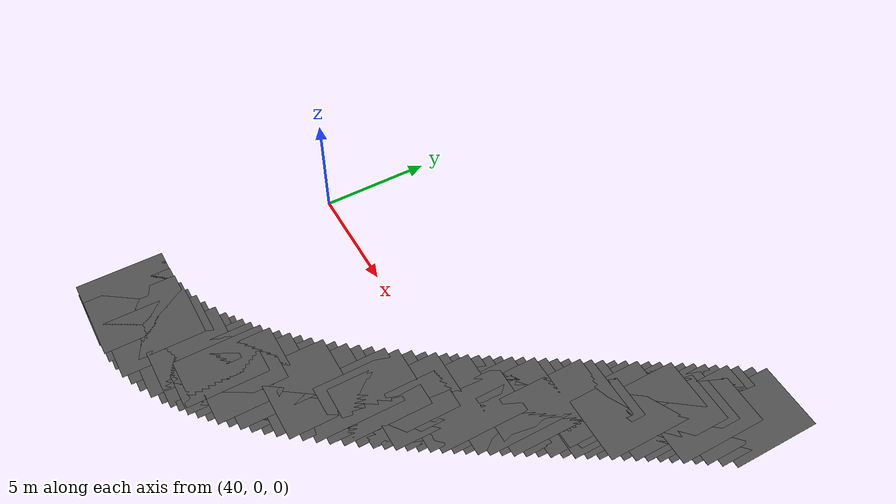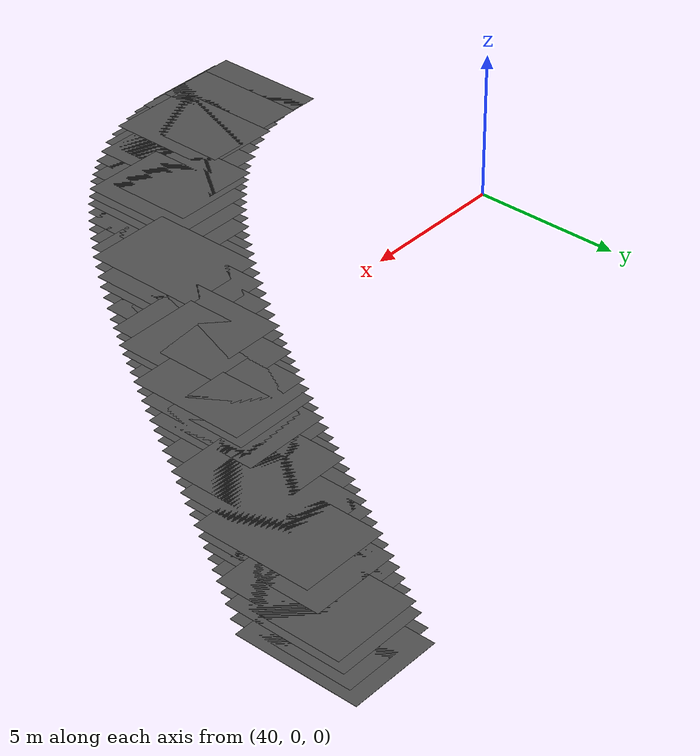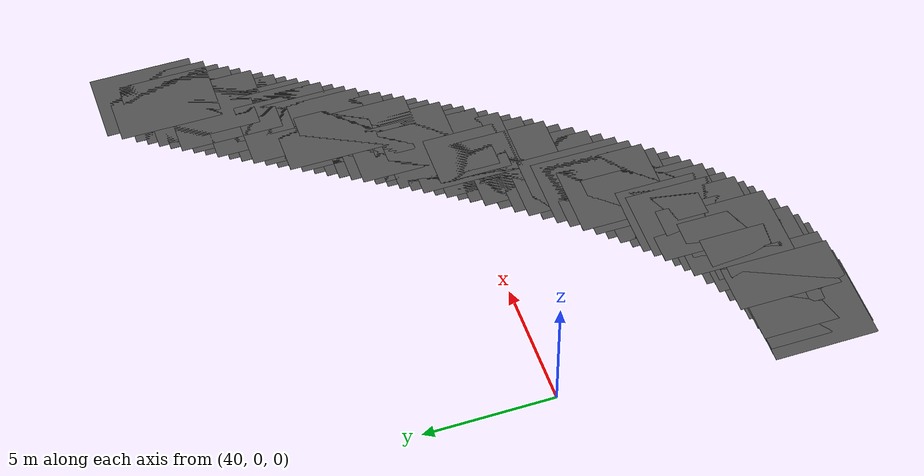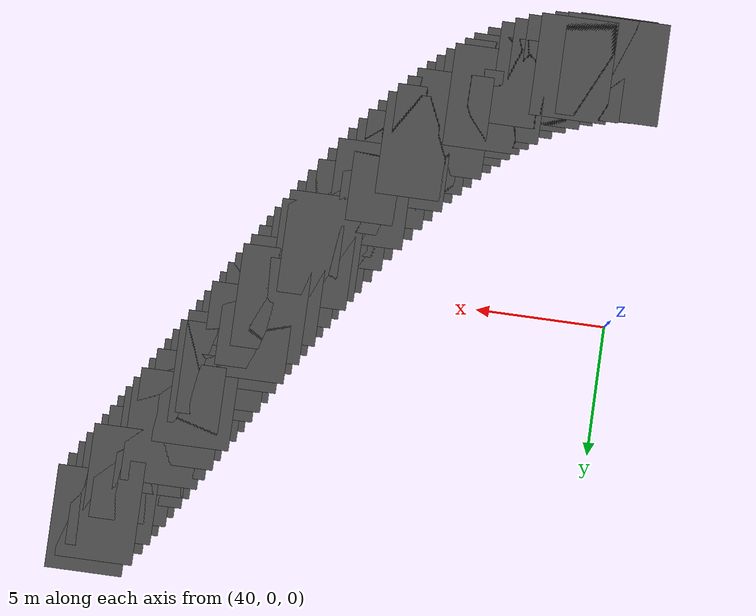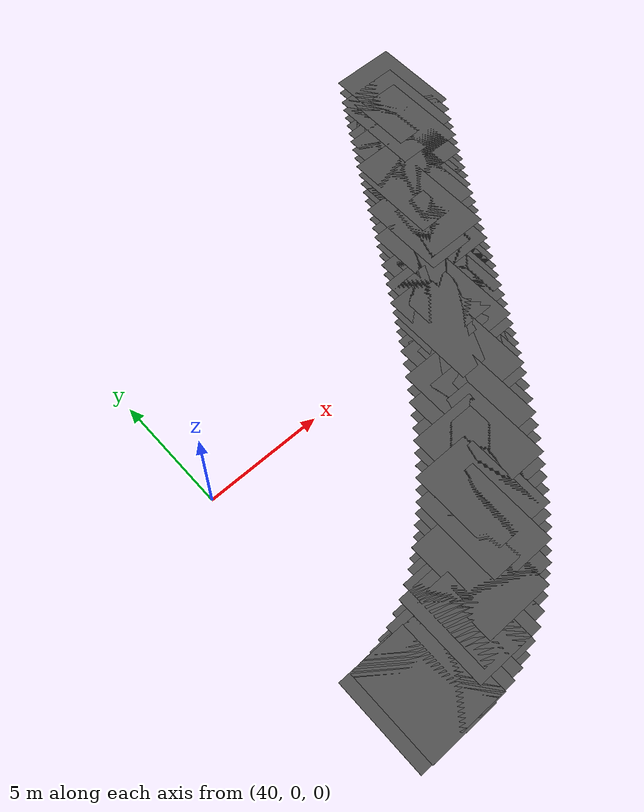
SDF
<sdf version="1.7">
 <world name="default">
  <model name="roadSegment_40_1">
   <static>1</static>
   <link name="link">
    <collision name="collision"><geometry><box><size>3 4 0.01</size></box></geometry></collision>
    <visual name="visual">
     <cast_shadows>0</cast_shadows>
     <geometry><box><size>3 4 0.01</size></box></geometry>
     <material>
      <script>
       <uri>model://asphalt_plane/materials/scripts</uri>
       <uri>model://asphalt_plane/materials/textures</uri>
       <name>vrc/asphalt</name>
      </script>
     </material>
    </visual>
   </link>
   <pose>40.5 -9.99283 0 0 -0 0</pose>
  </model>
  <model name="roadSegment_41_0">
   <static>1</static>
   <link name="link">
    <collision name="collision"><geometry><box><size>3 4 0.01</size></box></geometry></collision>
    <visual name="visual">
     <cast_shadows>0</cast_shadows>
     <geometry><box><size>3 4 0.01</size></box></geometry>
     <material>
      <script>
       <uri>model://asphalt_plane/materials/scripts</uri>
       <uri>model://asphalt_plane/materials/textures</uri>
       <name>vrc/asphalt</name>
      </script>
     </material>
    </visual>
   </link>
   <pose>41 -10.0257 0 0 -0 0</pose>
  </model>
  <model name="roadSegment_41_1">
   <static>1</static>
   <link name="link">
    <collision name="collision"><geometry><box><size>3 4 0.01</size></box></geometry></collision>
    <visual name="visual">
     <cast_shadows>0</cast_shadows>
     <geometry><box><size>3 4 0.01</size></box></geometry>
     <material>
      <script>
       <uri>model://asphalt_plane/materials/scripts</uri>
       <uri>model://asphalt_plane/materials/textures</uri>
       <name>vrc/asphalt</name>
      </script>
     </material>
    </visual>
   </link>
   <pose>41.5 -9.98021 0 0 -0 0</pose>
  </model>
  <model name="roadSegment_42_0">
   <static>1</static>
   <link name="link">
    <collision name="collision"><geometry><box><size>3 4 0.01</size></box></geometry></collision>
    <visual name="visual">
     <cast_shadows>0</cast_shadows>
     <geometry><box><size>3 4 0.01</size></box></geometry>
     <material>
      <script>
       <uri>model://asphalt_plane/materials/scripts</uri>
       <uri>model://asphalt_plane/materials/textures</uri>
       <name>vrc/asphalt</name>
      </script>
     </material>
    </visual>
   </link>
   <pose>42 -9.93471 0 0 -0 0</pose>
  </model>
  <model name="roadSegment_42_1">
   <static>1</static>
   <link name="link">
    <collision name="collision"><geometry><box><size>3 4 0.01</size></box></geometry></collision>
    <visual name="visual">
     <cast_shadows>0</cast_shadows>
     <geometry><box><size>3 4 0.01</size></box></geometry>
     <material>
      <script>
       <uri>model://asphalt_plane/materials/scripts</uri>
       <uri>model://asphalt_plane/materials/textures</uri>
       <name>vrc/asphalt</name>
      </script>
     </material>
    </visual>
   </link>
   <pose>42.5 -9.80802 0 0 -0 0</pose>
  </model>
  <model name="roadSegment_43_0">
   <static>1</static>
   <link name="link">
    <collision name="collision"><geometry><box><size>3 4 0.01</size></box></geometry></collision>
    <visual name="visual">
     <cast_shadows>0</cast_shadows>
     <geometry><box><size>3 4 0.01</size></box></geometry>
     <material>
      <script>
       <uri>model://asphalt_plane/materials/scripts</uri>
       <uri>model://asphalt_plane/materials/textures</uri>
       <name>vrc/asphalt</name>
      </script>
     </material>
    </visual>
   </link>
   <pose>43 -9.68132 0 0 -0 0</pose>
  </model>
  <model name="roadSegment_43_1">
   <static>1</static>
   <link name="link">
    <collision name="collision"><geometry><box><size>3 4 0.01</size></box></geometry></collision>
    <visual name="visual">
     <cast_shadows>0</cast_shadows>
     <geometry><box><size>3 4 0.01</size></box></geometry>
     <material>
      <script>
       <uri>model://asphalt_plane/materials/scripts</uri>
       <uri>model://asphalt_plane/materials/textures</uri>
       <name>vrc/asphalt</name>
      </script>
     </material>
    </visual>
   </link>
   <pose>43.5 -9.47194 0 0 -0 0</pose>
  </model>
  <model name="roadSegment_44_0">
   <static>1</static>
   <link name="link">
    <collision name="collision"><geometry><box><size>3 4 0.01</size></box></geometry></collision>
    <visual name="visual">
     <cast_shadows>0</cast_shadows>
     <geometry><box><size>3 4 0.01</size></box></geometry>
     <material>
      <script>
       <uri>model://asphalt_plane/materials/scripts</uri>
       <uri>model://asphalt_plane/materials/textures</uri>
       <name>vrc/asphalt</name>
      </script>
     </material>
    </visual>
   </link>
   <pose>44 -9.26255 0 0 -0 0</pose>
  </model>
  <model name="roadSegment_44_1">
   <static>1</static>
   <link name="link">
    <collision name="collision"><geometry><box><size>3 4 0.01</size></box></geometry></collision>
    <visual name="visual">
     <cast_shadows>0</cast_shadows>
     <geometry><box><size>3 4 0.01</size></box></geometry>
     <material>
      <script>
       <uri>model://asphalt_plane/materials/scripts</uri>
       <uri>model://asphalt_plane/materials/textures</uri>
       <name>vrc/asphalt</name>
      </script>
     </material>
    </visual>
   </link>
   <pose>44.5 -8.97035 0 0 -0 0</pose>
  </model>
  <model name="roadSegment_45_0">
   <static>1</static>
   <link name="link">
    <collision name="collision"><geometry><box><size>3 4 0.01</size></box></geometry></collision>
    <visual name="visual">
     <cast_shadows>0</cast_shadows>
     <geometry><box><size>3 4 0.01</size></box></geometry>
     <material>
      <script>
       <uri>model://asphalt_plane/materials/scripts</uri>
       <uri>model://asphalt_plane/materials/textures</uri>
       <name>vrc/asphalt</name>
      </script>
     </material>
    </visual>
   </link>
   <pose>45 -8.67815 0 0 -0 0</pose>
  </model>
  <model name="roadSegment_45_1">
   <static>1</static>
   <link name="link">
    <collision name="collision"><geometry><box><size>3 4 0.01</size></box></geometry></collision>
    <visual name="visual">
     <cast_shadows>0</cast_shadows>
     <geometry><box><size>3 4 0.01</size></box></geometry>
     <material>
      <script>
       <uri>model://asphalt_plane/materials/scripts</uri>
       <uri>model://asphalt_plane/materials/textures</uri>
       <name>vrc/asphalt</name>
      </script>
     </material>
    </visual>
   </link>
   <pose>45.3333 -8.42901 0 0 -0 0</pose>
  </model>
  <model name="roadSegment_45_2">
   <static>1</static>
   <link name="link">
    <collision name="collision"><geometry><box><size>3 4 0.01</size></box></geometry></collision>
    <visual name="visual">
     <cast_shadows>0</cast_shadows>
     <geometry><box><size>3 4 0.01</size></box></geometry>
     <material>
      <script>
       <uri>model://asphalt_plane/materials/scripts</uri>
       <uri>model://asphalt_plane/materials/textures</uri>
       <name>vrc/asphalt</name>
      </script>
     </material>
    </visual>
   </link>
   <pose>45.6667 -8.17987 0 0 -0 0</pose>
  </model>
  <model name="roadSegment_46_0">
   <static>1</static>
   <link name="link">
    <collision name="collision"><geometry><box><size>3 4 0.01</size></box></geometry></collision>
    <visual name="visual">
     <cast_shadows>0</cast_shadows>
     <geometry><box><size>3 4 0.01</size></box></geometry>
     <material>
      <script>
       <uri>model://asphalt_plane/materials/scripts</uri>
       <uri>model://asphalt_plane/materials/textures</uri>
       <name>vrc/asphalt</name>
      </script>
     </material>
    </visual>
   </link>
   <pose>46 -7.93073 0 0 -0 0</pose>
  </model>
  <model name="roadSegment_46_1">
   <static>1</static>
   <link name="link">
    <collision name="collision"><geometry><box><size>3 4 0.01</size></box></geometry></collision>
    <visual name="visual">
     <cast_shadows>0</cast_shadows>
     <geometry><box><size>3 4 0.01</size></box></geometry>
     <material>
      <script>
       <uri>model://asphalt_plane/materials/scripts</uri>
       <uri>model://asphalt_plane/materials/textures</uri>
       <name>vrc/asphalt</name>
      </script>
     </material>
    </visual>
   </link>
   <pose>46.3333 -7.62909 0 0 -0 0</pose>
  </model>
  <model name="roadSegment_46_2">
   <static>1</static>
   <link name="link">
    <collision name="collision"><geometry><box><size>3 4 0.01</size></box></geometry></collision>
    <visual name="visual">
     <cast_shadows>0</cast_shadows>
     <geometry><box><size>3 4 0.01</size></box></geometry>
     <material>
      <script>
       <uri>model://asphalt_plane/materials/scripts</uri>
       <uri>model://asphalt_plane/materials/textures</uri>
       <name>vrc/asphalt</name>
      </script>
     </material>
    </visual>
   </link>
   <pose>46.6667 -7.32744 0 0 -0 0</pose>
  </model>
  <model name="roadSegment_47_0">
   <static>1</static>
   <link name="link">
    <collision name="collision"><geometry><box><size>3 4 0.01</size></box></geometry></collision>
    <visual name="visual">
     <cast_shadows>0</cast_shadows>
     <geometry><box><size>3 4 0.01</size></box></geometry>
     <material>
      <script>
       <uri>model://asphalt_plane/materials/scripts</uri>
       <uri>model://asphalt_plane/materials/textures</uri>
       <name>vrc/asphalt</name>
      </script>
     </material>
    </visual>
   </link>
   <pose>47 -7.02579 0 0 -0 0</pose>
  </model>
  <model name="roadSegment_47_1">
   <static>1</static>
   <link name="link">
    <collision name="collision"><geometry><box><size>3 4 0.01</size></box></geometry></collision>
    <visual name="visual">
     <cast_shadows>0</cast_shadows>
     <geometry><box><size>3 4 0.01</size></box></geometry>
     <material>
      <script>
       <uri>model://asphalt_plane/materials/scripts</uri>
       <uri>model://asphalt_plane/materials/textures</uri>
       <name>vrc/asphalt</name>
      </script>
     </material>
    </visual>
   </link>
   <pose>47.3333 -6.67444 0 0 -0 0</pose>
  </model>
  <model name="roadSegment_47_2">
   <static>1</static>
   <link name="link">
    <collision name="collision"><geometry><box><size>3 4 0.01</size></box></geometry></collision>
    <visual name="visual">
     <cast_shadows>0</cast_shadows>
     <geometry><box><size>3 4 0.01</size></box></geometry>
     <material>
      <script>
       <uri>model://asphalt_plane/materials/scripts</uri>
       <uri>model://asphalt_plane/materials/textures</uri>
       <name>vrc/asphalt</name>
      </script>
     </material>
    </visual>
   </link>
   <pose>47.6667 -6.32308 0 0 -0 0</pose>
  </model>
  <model name="roadSegment_48_0">
   <static>1</static>
   <link name="link">
    <collision name="collision"><geometry><box><size>3 4 0.01</size></box></geometry></collision>
    <visual name="visual">
     <cast_shadows>0</cast_shadows>
     <geometry><box><size>3 4 0.01</size></box></geometry>
     <material>
      <script>
       <uri>model://asphalt_plane/materials/scripts</uri>
       <uri>model://asphalt_plane/materials/textures</uri>
       <name>vrc/asphalt</name>
      </script>
     </material>
    </visual>
   </link>
   <pose>48 -5.97173 0 0 -0 0</pose>
  </model>
  <model name="roadSegment_48_1">
   <static>1</static>
   <link name="link">
    <collision name="collision"><geometry><box><size>3 4 0.01</size></box></geometry></collision>
    <visual name="visual">
     <cast_shadows>0</cast_shadows>
     <geometry><box><size>3 4 0.01</size></box></geometry>
     <material>
      <script>
       <uri>model://asphalt_plane/materials/scripts</uri>
       <uri>model://asphalt_plane/materials/textures</uri>
       <name>vrc/asphalt</name>
      </script>
     </material>
    </visual>
   </link>
   <pose>48.3333 -5.57441 0 0 -0 0</pose>
  </model>
  <model name="roadSegment_48_2">
   <static>1</static>
   <link name="link">
    <collision name="collision"><geometry><box><size>3 4 0.01</size></box></geometry></collision>
    <visual name="visual">
     <cast_shadows>0</cast_shadows>
     <geometry><box><size>3 4 0.01</size></box></geometry>
     <material>
      <script>
       <uri>model://asphalt_plane/materials/scripts</uri>
       <uri>model://asphalt_plane/materials/textures</uri>
       <name>vrc/asphalt</name>
      </script>
     </material>
    </visual>
   </link>
   <pose>48.6667 -5.17709 0 0 -0 0</pose>
  </model>
  <model name="roadSegment_49_0">
   <static>1</static>
   <link name="link">
    <collision name="collision"><geometry><box><size>3 4 0.01</size></box></geometry></collision>
    <visual name="visual">
     <cast_shadows>0</cast_shadows>
     <geometry><box><size>3 4 0.01</size></box></geometry>
     <material>
      <script>
       <uri>model://asphalt_plane/materials/scripts</uri>
       <uri>model://asphalt_plane/materials/textures</uri>
       <name>vrc/asphalt</name>
      </script>
     </material>
    </visual>
   </link>
   <pose>49 -4.77976 0 0 -0 0</pose>
  </model>
  <model name="roadSegment_49_1">
   <static>1</static>
   <link name="link">
    <collision name="collision"><geometry><box><size>3 4 0.01</size></box></geometry></collision>
    <visual name="visual">
     <cast_shadows>0</cast_shadows>
     <geometry><box><size>3 4 0.01</size></box></geometry>
     <material>
      <script>
       <uri>model://asphalt_plane/materials/scripts</uri>
       <uri>model://asphalt_plane/materials/textures</uri>
       <name>vrc/asphalt</name>
      </script>
     </material>
    </visual>
   </link>
   <pose>49.3333 -4.34113 0 0 -0 0</pose>
  </model>
  <model name="roadSegment_49_2">
   <static>1</static>
   <link name="link">
    <collision name="collision"><geometry><box><size>3 4 0.01</size></box></geometry></collision>
    <visual name="visual">
     <cast_shadows>0</cast_shadows>
     <geometry><box><size>3 4 0.01</size></box></geometry>
     <material>
      <script>
       <uri>model://asphalt_plane/materials/scripts</uri>
       <uri>model://asphalt_plane/materials/textures</uri>
       <name>vrc/asphalt</name>
      </script>
     </material>
    </visual>
   </link>
   <pose>49.6667 -3.9025 0 0 -0 0</pose>
  </model>
  <model name="roadSegment_50_0">
   <static>1</static>
   <link name="link">
    <collision name="collision"><geometry><box><size>3 4 0.01</size></box></geometry></collision>
    <visual name="visual">
     <cast_shadows>0</cast_shadows>
     <geometry><box><size>3 4 0.01</size></box></geometry>
     <material>
      <script>
       <uri>model://asphalt_plane/materials/scripts</uri>
       <uri>model://asphalt_plane/materials/textures</uri>
       <name>vrc/asphalt</name>
      </script>
     </material>
    </visual>
   </link>
   <pose>50 -3.46387 0 0 -0 0</pose>
  </model>
  <model name="roadSegment_50_1">
   <static>1</static>
   <link name="link">
    <collision name="collision"><geometry><box><size>3 4 0.01</size></box></geometry></collision>
    <visual name="visual">
     <cast_shadows>0</cast_shadows>
     <geometry><box><size>3 4 0.01</size></box></geometry>
     <material>
      <script>
       <uri>model://asphalt_plane/materials/scripts</uri>
       <uri>model://asphalt_plane/materials/textures</uri>
       <name>vrc/asphalt</name>
      </script>
     </material>
    </visual>
   </link>
   <pose>50.3333 -2.98944 0 0 -0 0</pose>
  </model>
  <model name="roadSegment_50_2">
   <static>1</static>
   <link name="link">
    <collision name="collision"><geometry><box><size>3 4 0.01</size></box></geometry></collision>
    <visual name="visual">
     <cast_shadows>0</cast_shadows>
     <geometry><box><size>3 4 0.01</size></box></geometry>
     <material>
      <script>
       <uri>model://asphalt_plane/materials/scripts</uri>
       <uri>model://asphalt_plane/materials/textures</uri>
       <name>vrc/asphalt</name>
      </script>
     </material>
    </visual>
   </link>
   <pose>50.6667 -2.51501 0 0 -0 0</pose>
  </model>
  <model name="roadSegment_51_0">
   <static>1</static>
   <link name="link">
    <collision name="collision"><geometry><box><size>3 4 0.01</size></box></geometry></collision>
    <visual name="visual">
     <cast_shadows>0</cast_shadows>
     <geometry><box><size>3 4 0.01</size></box></geometry>
     <material>
      <script>
       <uri>model://asphalt_plane/materials/scripts</uri>
       <uri>model://asphalt_plane/materials/textures</uri>
       <name>vrc/asphalt</name>
      </script>
     </material>
    </visual>
   </link>
   <pose>51 -2.04057 0 0 -0 0</pose>
  </model>
  <model name="roadSegment_51_1">
   <static>1</static>
   <link name="link">
    <collision name="collision"><geometry><box><size>3 4 0.01</size></box></geometry></collision>
    <visual name="visual">
     <cast_shadows>0</cast_shadows>
     <geometry><box><size>3 4 0.01</size></box></geometry>
     <material>
      <script>
       <uri>model://asphalt_plane/materials/scripts</uri>
       <uri>model://asphalt_plane/materials/textures</uri>
       <name>vrc/asphalt</name>
      </script>
     </material>
    </visual>
   </link>
   <pose>51.25 -1.66263 0 0 -0 0</pose>
  </model>
  <model name="roadSegment_51_2">
   <static>1</static>
   <link name="link">
    <collision name="collision"><geometry><box><size>3 4 0.01</size></box></geometry></collision>
    <visual name="visual">
     <cast_shadows>0</cast_shadows>
     <geometry><box><size>3 4 0.01</size></box></geometry>
     <material>
      <script>
       <uri>model://asphalt_plane/materials/scripts</uri>
       <uri>model://asphalt_plane/materials/textures</uri>
       <name>vrc/asphalt</name>
      </script>
     </material>
    </visual>
   </link>
   <pose>51.5 -1.28469 0 0 -0 0</pose>
  </model>
  <model name="roadSegment_51_3">
   <static>1</static>
   <link name="link">
    <collision name="collision"><geometry><box><size>3 4 0.01</size></box></geometry></collision>
    <visual name="visual">
     <cast_shadows>0</cast_shadows>
     <geometry><box><size>3 4 0.01</size></box></geometry>
     <material>
      <script>
       <uri>model://asphalt_plane/materials/scripts</uri>
       <uri>model://asphalt_plane/materials/textures</uri>
       <name>vrc/asphalt</name>
      </script>
     </material>
    </visual>
   </link>
   <pose>51.75 -0.906745 0 0 -0 0</pose>
  </model>
  <model name="roadSegment_52_0">
   <static>1</static>
   <link name="link">
    <collision name="collision"><geometry><box><size>3 4 0.01</size></box></geometry></collision>
    <visual name="visual">
     <cast_shadows>0</cast_shadows>
     <geometry><box><size>3 4 0.01</size></box></geometry>
     <material>
      <script>
       <uri>model://asphalt_plane/materials/scripts</uri>
       <uri>model://asphalt_plane/materials/textures</uri>
       <name>vrc/asphalt</name>
      </script>
     </material>
    </visual>
   </link>
   <pose>52 -0.528802 0 0 -0 0</pose>
  </model>
  <model name="roadSegment_52_1">
   <static>1</static>
   <link name="link">
    <collision name="collision"><geometry><box><size>3 4 0.01</size></box></geometry></collision>
    <visual name="visual">
     <cast_shadows>0</cast_shadows>
     <geometry><box><size>3 4 0.01</size></box></geometry>
     <material>
      <script>
       <uri>model://asphalt_plane/materials/scripts</uri>
       <uri>model://asphalt_plane/materials/textures</uri>
       <name>vrc/asphalt</name>
      </script>
     </material>
    </visual>
   </link>
   <pose>52.25 -0.133998 0 0 -0 0</pose>
  </model>
  <model name="roadSegment_52_2">
   <static>1</static>
   <link name="link">
    <collision name="collision"><geometry><box><size>3 4 0.01</size></box></geometry></collision>
    <visual name="visual">
     <cast_shadows>0</cast_shadows>
     <geometry><box><size>3 4 0.01</size></box></geometry>
     <material>
      <script>
       <uri>model://asphalt_plane/materials/scripts</uri>
       <uri>model://asphalt_plane/materials/textures</uri>
       <name>vrc/asphalt</name>
      </script>
     </material>
    </visual>
   </link>
   <pose>52.5 0.260805 0 0 -0 0</pose>
  </model>
  <model name="roadSegment_52_3">
   <static>1</static>
   <link name="link">
    <collision name="collision"><geometry><box><size>3 4 0.01</size></box></geometry></collision>
    <visual name="visual">
     <cast_shadows>0</cast_shadows>
     <geometry><box><size>3 4 0.01</size></box></geometry>
     <material>
      <script>
       <uri>model://asphalt_plane/materials/scripts</uri>
       <uri>model://asphalt_plane/materials/textures</uri>
       <name>vrc/asphalt</name>
      </script>
     </material>
    </visual>
   </link>
   <pose>52.75 0.655609 0 0 -0 0</pose>
  </model>
  <model name="roadSegment_53_0">
   <static>1</static>
   <link name="link">
    <collision name="collision"><geometry><box><size>3 4 0.01</size></box></geometry></collision>
    <visual name="visual">
     <cast_shadows>0</cast_shadows>
     <geometry><box><size>3 4 0.01</size></box></geometry>
     <material>
      <script>
       <uri>model://asphalt_plane/materials/scripts</uri>
       <uri>model://asphalt_plane/materials/textures</uri>
       <name>vrc/asphalt</name>
      </script>
     </material>
    </visual>
   </link>
   <pose>53 1.05041 0 0 -0 0</pose>
  </model>
  <model name="roadSegment_53_1">
   <static>1</static>
   <link name="link">
    <collision name="collision"><geometry><box><size>3 4 0.01</size></box></geometry></collision>
    <visual name="visual">
     <cast_shadows>0</cast_shadows>
     <geometry><box><size>3 4 0.01</size></box></geometry>
     <material>
      <script>
       <uri>model://asphalt_plane/materials/scripts</uri>
       <uri>model://asphalt_plane/materials/textures</uri>
       <name>vrc/asphalt</name>
      </script>
     </material>
    </visual>
   </link>
   <pose>53.25 1.45636 0 0 -0 0</pose>
  </model>
  <model name="roadSegment_53_2">
   <static>1</static>
   <link name="link">
    <collision name="collision"><geometry><box><size>3 4 0.01</size></box></geometry></collision>
    <visual name="visual">
     <cast_shadows>0</cast_shadows>
     <geometry><box><size>3 4 0.01</size></box></geometry>
     <material>
      <script>
       <uri>model://asphalt_plane/materials/scripts</uri>
       <uri>model://asphalt_plane/materials/textures</uri>
       <name>vrc/asphalt</name>
      </script>
     </material>
    </visual>
   </link>
   <pose>53.5 1.86231 0 0 -0 0</pose>
  </model>
  <model name="roadSegment_53_3">
   <static>1</static>
   <link name="link">
    <collision name="collision"><geometry><box><size>3 4 0.01</size></box></geometry></collision>
    <visual name="visual">
     <cast_shadows>0</cast_shadows>
     <geometry><box><size>3 4 0.01</size></box></geometry>
     <material>
      <script>
       <uri>model://asphalt_plane/materials/scripts</uri>
       <uri>model://asphalt_plane/materials/textures</uri>
       <name>vrc/asphalt</name>
      </script>
     </material>
    </visual>
   </link>
   <pose>53.75 2.26825 0 0 -0 0</pose>
  </model>
  <model name="roadSegment_54_0">
   <static>1</static>
   <link name="link">
    <collision name="collision"><geometry><box><size>3 4 0.01</size></box></geometry></collision>
    <visual name="visual">
     <cast_shadows>0</cast_shadows>
     <geometry><box><size>3 4 0.01</size></box></geometry>
     <material>
      <script>
       <uri>model://asphalt_plane/materials/scripts</uri>
       <uri>model://asphalt_plane/materials/textures</uri>
       <name>vrc/asphalt</name>
      </script>
     </material>
    </visual>
   </link>
   <pose>54 2.6742 0 0 -0 0</pose>
  </model>
  <model name="roadSegment_54_1">
   <static>1</static>
   <link name="link">
    <collision name="collision"><geometry><box><size>3 4 0.01</size></box></geometry></collision>
    <visual name="visual">
     <cast_shadows>0</cast_shadows>
     <geometry><box><size>3 4 0.01</size></box></geometry>
     <material>
      <script>
       <uri>model://asphalt_plane/materials/scripts</uri>
       <uri>model://asphalt_plane/materials/textures</uri>
       <name>vrc/asphalt</name>
      </script>
     </material>
    </visual>
   </link>
   <pose>54.25 3.0852 0 0 -0 0</pose>
  </model>
  <model name="roadSegment_54_2">
   <static>1</static>
   <link name="link">
    <collision name="collision"><geometry><box><size>3 4 0.01</size></box></geometry></collision>
    <visual name="visual">
     <cast_shadows>0</cast_shadows>
     <geometry><box><size>3 4 0.01</size></box></geometry>
     <material>
      <script>
       <uri>model://asphalt_plane/materials/scripts</uri>
       <uri>model://asphalt_plane/materials/textures</uri>
       <name>vrc/asphalt</name>
      </script>
     </material>
    </visual>
   </link>
   <pose>54.5 3.49619 0 0 -0 0</pose>
  </model>
  <model name="roadSegment_54_3">
   <static>1</static>
   <link name="link">
    <collision name="collision"><geometry><box><size>3 4 0.01</size></box></geometry></collision>
    <visual name="visual">
     <cast_shadows>0</cast_shadows>
     <geometry><box><size>3 4 0.01</size></box></geometry>
     <material>
      <script>
       <uri>model://asphalt_plane/materials/scripts</uri>
       <uri>model://asphalt_plane/materials/textures</uri>
       <name>vrc/asphalt</name>
      </script>
     </material>
    </visual>
   </link>
   <pose>54.75 3.90719 0 0 -0 0</pose>
  </model>
  <model name="roadSegment_55_0">
   <static>1</static>
   <link name="link">
    <collision name="collision"><geometry><box><size>3 4 0.01</size></box></geometry></collision>
    <visual name="visual">
     <cast_shadows>0</cast_shadows>
     <geometry><box><size>3 4 0.01</size></box></geometry>
     <material>
      <script>
       <uri>model://asphalt_plane/materials/scripts</uri>
       <uri>model://asphalt_plane/materials/textures</uri>
       <name>vrc/asphalt</name>
      </script>
     </material>
    </visual>
   </link>
   <pose>55 4.31819 0 0 -0 0</pose>
  </model>
  <model name="roadSegment_55_1">
   <static>1</static>
   <link name="link">
    <collision name="collision"><geometry><box><size>3 4 0.01</size></box></geometry></collision>
    <visual name="visual">
     <cast_shadows>0</cast_shadows>
     <geometry><box><size>3 4 0.01</size></box></geometry>
     <material>
      <script>
       <uri>model://asphalt_plane/materials/scripts</uri>
       <uri>model://asphalt_plane/materials/textures</uri>
       <name>vrc/asphalt</name>
      </script>
     </material>
    </visual>
   </link>
   <pose>55.25 4.72786 0 0 -0 0</pose>
  </model>
  <model name="roadSegment_55_2">
   <static>1</static>
   <link name="link">
    <collision name="collision"><geometry><box><size>3 4 0.01</size></box></geometry></collision>
    <visual name="visual">
     <cast_shadows>0</cast_shadows>
     <geometry><box><size>3 4 0.01</size></box></geometry>
     <material>
      <script>
       <uri>model://asphalt_plane/materials/scripts</uri>
       <uri>model://asphalt_plane/materials/textures</uri>
       <name>vrc/asphalt</name>
      </script>
     </material>
    </visual>
   </link>
   <pose>55.5 5.13753 0 0 -0 0</pose>
  </model>
  <model name="roadSegment_55_3">
   <static>1</static>
   <link name="link">
    <collision name="collision"><geometry><box><size>3 4 0.01</size></box></geometry></collision>
    <visual name="visual">
     <cast_shadows>0</cast_shadows>
     <geometry><box><size>3 4 0.01</size></box></geometry>
     <material>
      <script>
       <uri>model://asphalt_plane/materials/scripts</uri>
       <uri>model://asphalt_plane/materials/textures</uri>
       <name>vrc/asphalt</name>
      </script>
     </material>
    </visual>
   </link>
   <pose>55.75 5.5472 0 0 -0 0</pose>
  </model>
  <model name="roadSegment_56_0">
   <static>1</static>
   <link name="link">
    <collision name="collision"><geometry><box><size>3 4 0.01</size></box></geometry></collision>
    <visual name="visual">
     <cast_shadows>0</cast_shadows>
     <geometry><box><size>3 4 0.01</size></box></geometry>
     <material>
      <script>
       <uri>model://asphalt_plane/materials/scripts</uri>
       <uri>model://asphalt_plane/materials/textures</uri>
       <name>vrc/asphalt</name>
      </script>
     </material>
    </visual>
   </link>
   <pose>56 5.95687 0 0 -0 0</pose>
  </model>
  <model name="roadSegment_56_1">
   <static>1</static>
   <link name="link">
    <collision name="collision"><geometry><box><size>3 4 0.01</size></box></geometry></collision>
    <visual name="visual">
     <cast_shadows>0</cast_shadows>
     <geometry><box><size>3 4 0.01</size></box></geometry>
     <material>
      <script>
       <uri>model://asphalt_plane/materials/scripts</uri>
       <uri>model://asphalt_plane/materials/textures</uri>
       <name>vrc/asphalt</name>
      </script>
     </material>
    </visual>
   </link>
   <pose>56.25 6.35865 0 0 -0 0</pose>
  </model>
  <model name="roadSegment_56_2">
   <static>1</static>
   <link name="link">
    <collision name="collision"><geometry><box><size>3 4 0.01</size></box></geometry></collision>
    <visual name="visual">
     <cast_shadows>0</cast_shadows>
     <geometry><box><size>3 4 0.01</size></box></geometry>
     <material>
      <script>
       <uri>model://asphalt_plane/materials/scripts</uri>
       <uri>model://asphalt_plane/materials/textures</uri>
       <name>vrc/asphalt</name>
      </script>
     </material>
    </visual>
   </link>
   <pose>56.5 6.76043 0 0 -0 0</pose>
  </model>
  <model name="roadSegment_56_3">
   <static>1</static>
   <link name="link">
    <collision name="collision"><geometry><box><size>3 4 0.01</size></box></geometry></collision>
    <visual name="visual">
     <cast_shadows>0</cast_shadows>
     <geometry><box><size>3 4 0.01</size></box></geometry>
     <material>
      <script>
       <uri>model://asphalt_plane/materials/scripts</uri>
       <uri>model://asphalt_plane/materials/textures</uri>
       <name>vrc/asphalt</name>
      </script>
     </material>
    </visual>
   </link>
   <pose>56.75 7.16221 0 0 -0 0</pose>
  </model>
  <model name="roadSegment_57_0">
   <static>1</static>
   <link name="link">
    <collision name="collision"><geometry><box><size>3 4 0.01</size></box></geometry></collision>
    <visual name="visual">
     <cast_shadows>0</cast_shadows>
     <geometry><box><size>3 4 0.01</size></box></geometry>
     <material>
      <script>
       <uri>model://asphalt_plane/materials/scripts</uri>
       <uri>model://asphalt_plane/materials/textures</uri>
       <name>vrc/asphalt</name>
      </script>
     </material>
    </visual>
   </link>
   <pose>57 7.56399 0 0 -0 0</pose>
  </model>
  <model name="roadSegment_57_1">
   <static>1</static>
   <link name="link">
    <collision name="collision"><geometry><box><size>3 4 0.01</size></box></geometry></collision>
    <visual name="visual">
     <cast_shadows>0</cast_shadows>
     <geometry><box><size>3 4 0.01</size></box></geometry>
     <material>
      <script>
       <uri>model://asphalt_plane/materials/scripts</uri>
       <uri>model://asphalt_plane/materials/textures</uri>
       <name>vrc/asphalt</name>
      </script>
     </material>
    </visual>
   </link>
   <pose>57.25 7.95124 0 0 -0 0</pose>
  </model>
  <model name="roadSegment_57_2">
   <static>1</static>
   <link name="link">
    <collision name="collision"><geometry><box><size>3 4 0.01</size></box></geometry></collision>
    <visual name="visual">
     <cast_shadows>0</cast_shadows>
     <geometry><box><size>3 4 0.01</size></box></geometry>
     <material>
      <script>
       <uri>model://asphalt_plane/materials/scripts</uri>
       <uri>model://asphalt_plane/materials/textures</uri>
       <name>vrc/asphalt</name>
      </script>
     </material>
    </visual>
   </link>
   <pose>57.5 8.33849 0 0 -0 0</pose>
  </model>
  <model name="roadSegment_57_3">
   <static>1</static>
   <link name="link">
    <collision name="collision"><geometry><box><size>3 4 0.01</size></box></geometry></collision>
    <visual name="visual">
     <cast_shadows>0</cast_shadows>
     <geometry><box><size>3 4 0.01</size></box></geometry>
     <material>
      <script>
       <uri>model://asphalt_plane/materials/scripts</uri>
       <uri>model://asphalt_plane/materials/textures</uri>
       <name>vrc/asphalt</name>
      </script>
     </material>
    </visual>
   </link>
   <pose>57.75 8.72574 0 0 -0 0</pose>
  </model>
  <model name="roadSegment_58_0">
   <static>1</static>
   <link name="link">
    <collision name="collision"><geometry><box><size>3 4 0.01</size></box></geometry></collision>
    <visual name="visual">
     <cast_shadows>0</cast_shadows>
     <geometry><box><size>3 4 0.01</size></box></geometry>
     <material>
      <script>
       <uri>model://asphalt_plane/materials/scripts</uri>
       <uri>model://asphalt_plane/materials/textures</uri>
       <name>vrc/asphalt</name>
      </script>
     </material>
    </visual>
   </link>
   <pose>58 9.11299 0 0 -0 0</pose>
  </model>
  <model name="roadSegment_58_1">
   <static>1</static>
   <link name="link">
    <collision name="collision"><geometry><box><size>3 4 0.01</size></box></geometry></collision>
    <visual name="visual">
     <cast_shadows>0</cast_shadows>
     <geometry><box><size>3 4 0.01</size></box></geometry>
     <material>
      <script>
       <uri>model://asphalt_plane/materials/scripts</uri>
       <uri>model://asphalt_plane/materials/textures</uri>
       <name>vrc/asphalt</name>
      </script>
     </material>
    </visual>
   </link>
   <pose>58.3333 9.60112 0 0 -0 0</pose>
  </model>
  <model name="roadSegment_58_2">
   <static>1</static>
   <link name="link">
    <collision name="collision"><geometry><box><size>3 4 0.01</size></box></geometry></collision>
    <visual name="visual">
     <cast_shadows>0</cast_shadows>
     <geometry><box><size>3 4 0.01</size></box></geometry>
     <material>
      <script>
       <uri>model://asphalt_plane/materials/scripts</uri>
       <uri>model://asphalt_plane/materials/textures</uri>
       <name>vrc/asphalt</name>
      </script>
     </material>
    </visual>
   </link>
   <pose>58.6667 10.0893 0 0 -0 0</pose>
  </model>
 </world>
</sdf>
